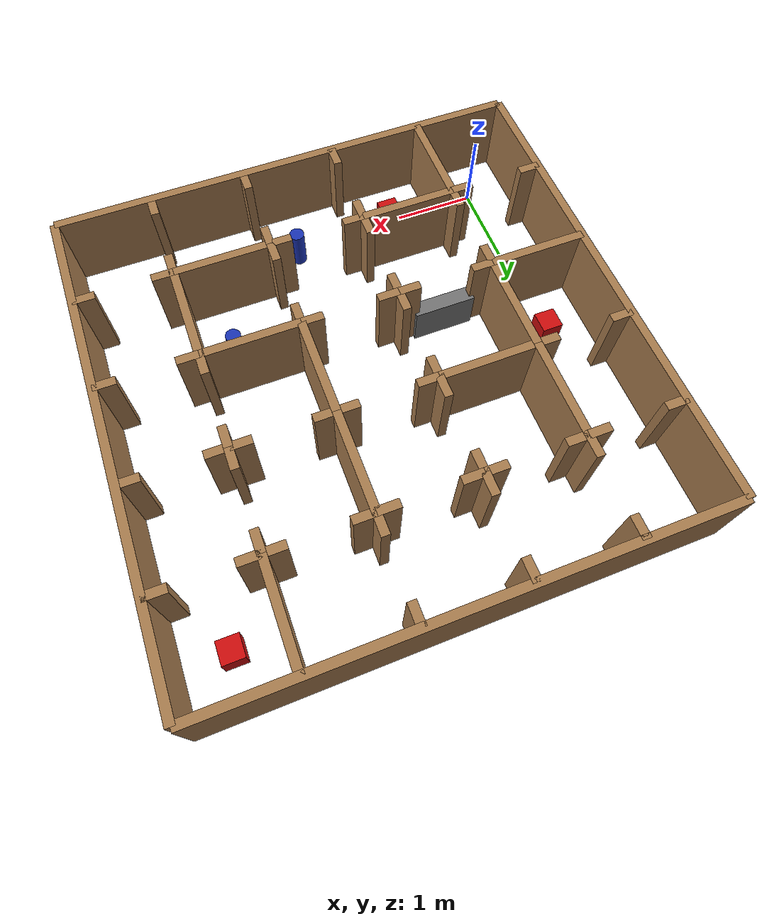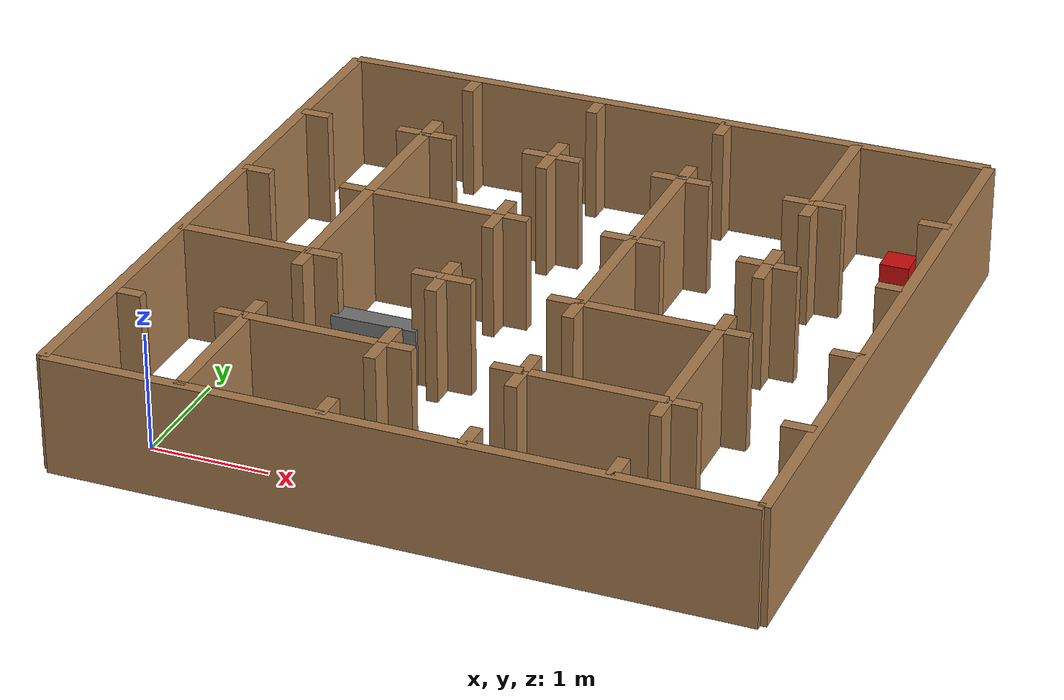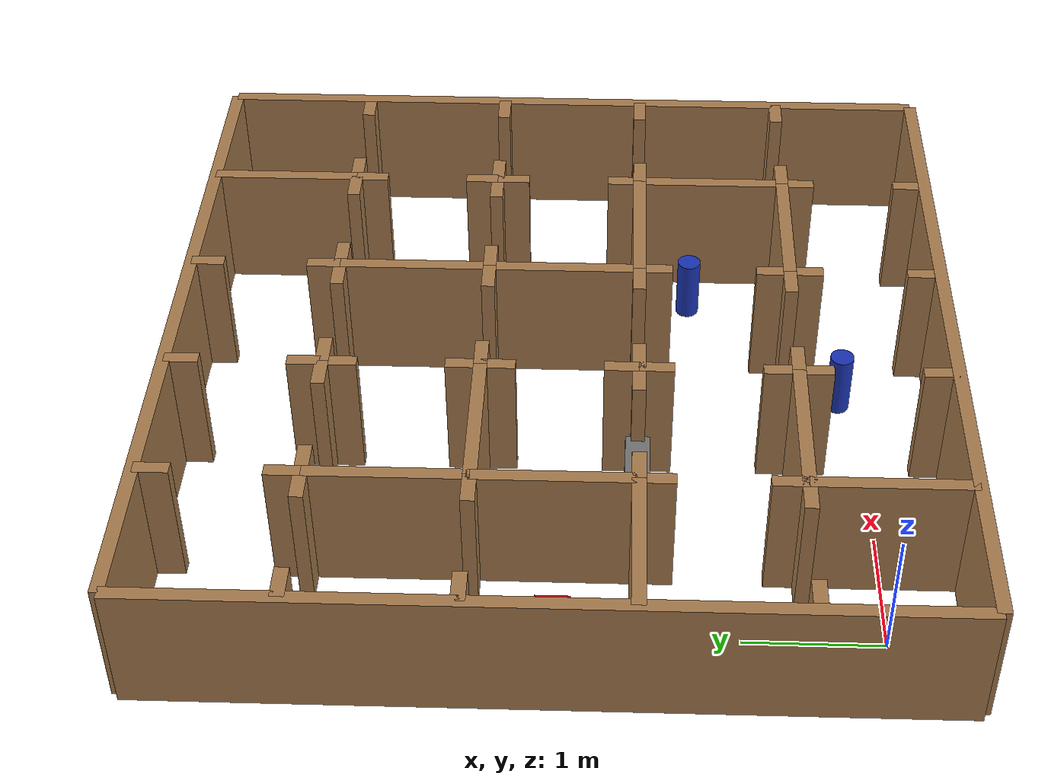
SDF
<sdf version="1.5">
 <world name="tars_borde_bloqueo">
  <physics type="ode">
   <max_step_size>0.001</max_step_size>
   <real_time_factor>1</real_time_factor>
   <real_time_update_rate>1000</real_time_update_rate>
   <gravity>0 0 -9.8</gravity>
  </physics>
  <plugin filename="gz-sim-physics-system" name="gz::sim::systems::Physics"/>
  <plugin filename="gz-sim-user-commands-system" name="gz::sim::systems::UserCommands"/>
  <plugin filename="gz-sim-scene-broadcaster-system" name="gz::sim::systems::SceneBroadcaster"/>
  <plugin filename="gz-sim-contact-system" name="gz::sim::systems::Contact"/>
  <plugin filename="gz-sim-sensors-system" name="gz::sim::systems::Sensors">
   <render_engine>ogre2</render_engine>
  </plugin>
  <plugin filename="gz-sim-imu-system" name="gz::sim::systems::Imu"/>
  <scene>
   <shadows>false</shadows>
   <ambient>0.2 0.2 0.2 1</ambient>
   <background>1 1 1 1</background>
   <grid>false</grid>
   <origin_visual>false</origin_visual>
  </scene>
  <include><uri>model://sun</uri></include>
  <light name="camera_spot_1_light" type="spot">
   <pose>-6 4 4 0 -1 -0.8</pose>
   <diffuse>0.5 0.5 0.5 1</diffuse>
   <specular>0.1 0.1 0.1 1</specular>
   <direction>0 0 -1</direction>
   <attenuation>
    <range>20</range>
    <constant>0.2</constant>
    <linear>0.01</linear>
    <quadratic>0.001</quadratic>
   </attenuation>
   <cast_shadows>0</cast_shadows>
   <spot><inner_angle>0.6</inner_angle><outer_angle>1</outer_angle><falloff>1</falloff></spot>
  </light>
  <light name="camera_spot_2_light" type="spot">
   <pose>5 -3 4 0 0.8 -0.6</pose>
   <diffuse>0.5 0.5 0.5 1</diffuse>
   <specular>0.1 0.1 0.1 1</specular>
   <direction>0 0 -1</direction>
   <attenuation>
    <range>20</range>
    <constant>0.3</constant>
    <linear>0.01</linear>
    <quadratic>0.001</quadratic>
   </attenuation>
   <cast_shadows>0</cast_shadows>
   <spot><inner_angle>0.6</inner_angle><outer_angle>1</outer_angle><falloff>1</falloff></spot>
  </light>
  <model name="paredes_borde">
   <static>true</static>
   <link name="pared_1">
    <pose>2.3 -0.575 0.5 0 0 0</pose>
    <collision name="collision"><geometry><box><size>5.75 0.1 1.0</size></box></geometry></collision>
    <visual name="visual">
     <geometry><box><size>5.75 0.1 1.0</size></box></geometry>
     <material><ambient>0.65 0.48 0.30 1</ambient><diffuse>0.65 0.48 0.30 1</diffuse></material>
    </visual>
   </link>
   <link name="pared_2">
    <pose>5.175 2.3 0.5 0 0 0</pose>
    <collision name="collision"><geometry><box><size>0.1 5.75 1.0</size></box></geometry></collision>
    <visual name="visual">
     <geometry><box><size>0.1 5.75 1.0</size></box></geometry>
     <material><ambient>0.65 0.48 0.30 1</ambient><diffuse>0.65 0.48 0.30 1</diffuse></material>
    </visual>
   </link>
   <link name="pared_3">
    <pose>2.3 5.175 0.5 0 0 0</pose>
    <collision name="collision"><geometry><box><size>5.75 0.1 1.0</size></box></geometry></collision>
    <visual name="visual">
     <geometry><box><size>5.75 0.1 1.0</size></box></geometry>
     <material><ambient>0.65 0.48 0.30 1</ambient><diffuse>0.65 0.48 0.30 1</diffuse></material>
    </visual>
   </link>
   <link name="pared_4">
    <pose>-0.575 2.3 0.5 0 0 0</pose>
    <collision name="collision"><geometry><box><size>0.1 5.75 1.0</size></box></geometry></collision>
    <visual name="visual">
     <geometry><box><size>0.1 5.75 1.0</size></box></geometry>
     <material><ambient>0.65 0.48 0.30 1</ambient><diffuse>0.65 0.48 0.30 1</diffuse></material>
    </visual>
   </link>
   <link name="pared_5">
    <pose>0.575 0.0 0.5 0 0 0</pose>
    <collision name="collision"><geometry><box><size>0.1 1.15 1.0</size></box></geometry></collision>
    <visual name="visual">
     <geometry><box><size>0.1 1.15 1.0</size></box></geometry>
     <material><ambient>0.65 0.48 0.30 1</ambient><diffuse>0.65 0.48 0.30 1</diffuse></material>
    </visual>
   </link>
   <link name="pared_6">
    <pose>-0.4475 0.575 0.5 0 0 0</pose>
    <collision name="collision">
     <geometry><box><size>0.25499999999999995 0.1 1.0</size></box></geometry>
    </collision>
    <visual name="visual">
     <geometry><box><size>0.25499999999999995 0.1 1.0</size></box></geometry>
     <material><ambient>0.65 0.48 0.30 1</ambient><diffuse>0.65 0.48 0.30 1</diffuse></material>
    </visual>
   </link>
   <link name="pared_7">
    <pose>0.4475 0.575 0.5 0 0 0</pose>
    <collision name="collision">
     <geometry><box><size>0.25499999999999995 0.1 1.0</size></box></geometry>
    </collision>
    <visual name="visual">
     <geometry><box><size>0.25499999999999995 0.1 1.0</size></box></geometry>
     <material><ambient>0.65 0.48 0.30 1</ambient><diffuse>0.65 0.48 0.30 1</diffuse></material>
    </visual>
   </link>
   <link name="pared_8">
    <pose>0.575 0.7024999999999999 0.5 0 0 0</pose>
    <collision name="collision">
     <geometry><box><size>0.1 0.2549999999999999 1.0</size></box></geometry>
    </collision>
    <visual name="visual">
     <geometry><box><size>0.1 0.2549999999999999 1.0</size></box></geometry>
     <material><ambient>0.65 0.48 0.30 1</ambient><diffuse>0.65 0.48 0.30 1</diffuse></material>
    </visual>
   </link>
   <link name="pared_9">
    <pose>0.575 1.5975 0.5 0 0 0</pose>
    <collision name="collision">
     <geometry><box><size>0.1 0.2549999999999999 1.0</size></box></geometry>
    </collision>
    <visual name="visual">
     <geometry><box><size>0.1 0.2549999999999999 1.0</size></box></geometry>
     <material><ambient>0.65 0.48 0.30 1</ambient><diffuse>0.65 0.48 0.30 1</diffuse></material>
    </visual>
   </link>
   <link name="pared_10">
    <pose>0.0 1.7249999999999999 0.5 0 0 0</pose>
    <collision name="collision"><geometry><box><size>1.15 0.1 1.0</size></box></geometry></collision>
    <visual name="visual">
     <geometry><box><size>1.15 0.1 1.0</size></box></geometry>
     <material><ambient>0.65 0.48 0.30 1</ambient><diffuse>0.65 0.48 0.30 1</diffuse></material>
    </visual>
   </link>
   <link name="pared_11">
    <pose>0.575 2.3 0.5 0 0 0</pose>
    <collision name="collision">
     <geometry><box><size>0.1 1.1500000000000001 1.0</size></box></geometry>
    </collision>
    <visual name="visual">
     <geometry><box><size>0.1 1.1500000000000001 1.0</size></box></geometry>
     <material><ambient>0.65 0.48 0.30 1</ambient><diffuse>0.65 0.48 0.30 1</diffuse></material>
    </visual>
   </link>
   <link name="pared_12">
    <pose>-0.4475 2.875 0.5 0 0 0</pose>
    <collision name="collision">
     <geometry><box><size>0.25499999999999995 0.1 1.0</size></box></geometry>
    </collision>
    <visual name="visual">
     <geometry><box><size>0.25499999999999995 0.1 1.0</size></box></geometry>
     <material><ambient>0.65 0.48 0.30 1</ambient><diffuse>0.65 0.48 0.30 1</diffuse></material>
    </visual>
   </link>
   <link name="pared_13">
    <pose>0.4475 2.875 0.5 0 0 0</pose>
    <collision name="collision">
     <geometry><box><size>0.25499999999999995 0.1 1.0</size></box></geometry>
    </collision>
    <visual name="visual">
     <geometry><box><size>0.25499999999999995 0.1 1.0</size></box></geometry>
     <material><ambient>0.65 0.48 0.30 1</ambient><diffuse>0.65 0.48 0.30 1</diffuse></material>
    </visual>
   </link>
   <link name="pared_14">
    <pose>0.575 3.4499999999999997 0.5 0 0 0</pose>
    <collision name="collision">
     <geometry><box><size>0.1 1.1499999999999995 1.0</size></box></geometry>
    </collision>
    <visual name="visual">
     <geometry><box><size>0.1 1.1499999999999995 1.0</size></box></geometry>
     <material><ambient>0.65 0.48 0.30 1</ambient><diffuse>0.65 0.48 0.30 1</diffuse></material>
    </visual>
   </link>
   <link name="pared_15">
    <pose>-0.4475 4.0249999999999995 0.5 0 0 0</pose>
    <collision name="collision">
     <geometry><box><size>0.25499999999999995 0.1 1.0</size></box></geometry>
    </collision>
    <visual name="visual">
     <geometry><box><size>0.25499999999999995 0.1 1.0</size></box></geometry>
     <material><ambient>0.65 0.48 0.30 1</ambient><diffuse>0.65 0.48 0.30 1</diffuse></material>
    </visual>
   </link>
   <link name="pared_16">
    <pose>0.4475 4.0249999999999995 0.5 0 0 0</pose>
    <collision name="collision">
     <geometry><box><size>0.25499999999999995 0.1 1.0</size></box></geometry>
    </collision>
    <visual name="visual">
     <geometry><box><size>0.25499999999999995 0.1 1.0</size></box></geometry>
     <material><ambient>0.65 0.48 0.30 1</ambient><diffuse>0.65 0.48 0.30 1</diffuse></material>
    </visual>
   </link>
   <link name="pared_17">
    <pose>0.575 4.1525 0.5 0 0 0</pose>
    <collision name="collision">
     <geometry><box><size>0.1 0.2549999999999999 1.0</size></box></geometry>
    </collision>
    <visual name="visual">
     <geometry><box><size>0.1 0.2549999999999999 1.0</size></box></geometry>
     <material><ambient>0.65 0.48 0.30 1</ambient><diffuse>0.65 0.48 0.30 1</diffuse></material>
    </visual>
   </link>
   <link name="pared_18">
    <pose>0.575 5.047499999999999 0.5 0 0 0</pose>
    <collision name="collision">
     <geometry><box><size>0.1 0.2549999999999999 1.0</size></box></geometry>
    </collision>
    <visual name="visual">
     <geometry><box><size>0.1 0.2549999999999999 1.0</size></box></geometry>
     <material><ambient>0.65 0.48 0.30 1</ambient><diffuse>0.65 0.48 0.30 1</diffuse></material>
    </visual>
   </link>
   <link name="pared_19">
    <pose>1.7249999999999999 -0.4475 0.5 0 0 0</pose>
    <collision name="collision">
     <geometry><box><size>0.1 0.25499999999999995 1.0</size></box></geometry>
    </collision>
    <visual name="visual">
     <geometry><box><size>0.1 0.25499999999999995 1.0</size></box></geometry>
     <material><ambient>0.65 0.48 0.30 1</ambient><diffuse>0.65 0.48 0.30 1</diffuse></material>
    </visual>
   </link>
   <link name="pared_20">
    <pose>1.7249999999999999 0.4475 0.5 0 0 0</pose>
    <collision name="collision">
     <geometry><box><size>0.1 0.25499999999999995 1.0</size></box></geometry>
    </collision>
    <visual name="visual">
     <geometry><box><size>0.1 0.25499999999999995 1.0</size></box></geometry>
     <material><ambient>0.65 0.48 0.30 1</ambient><diffuse>0.65 0.48 0.30 1</diffuse></material>
    </visual>
   </link>
   <link name="pared_21">
    <pose>1.15 0.575 0.5 0 0 0</pose>
    <collision name="collision"><geometry><box><size>1.15 0.1 1.0</size></box></geometry></collision>
    <visual name="visual">
     <geometry><box><size>1.15 0.1 1.0</size></box></geometry>
     <material><ambient>0.65 0.48 0.30 1</ambient><diffuse>0.65 0.48 0.30 1</diffuse></material>
    </visual>
   </link>
   <link name="pared_22">
    <pose>1.7249999999999999 0.7024999999999999 0.5 0 0 0</pose>
    <collision name="collision">
     <geometry><box><size>0.1 0.2549999999999999 1.0</size></box></geometry>
    </collision>
    <visual name="visual">
     <geometry><box><size>0.1 0.2549999999999999 1.0</size></box></geometry>
     <material><ambient>0.65 0.48 0.30 1</ambient><diffuse>0.65 0.48 0.30 1</diffuse></material>
    </visual>
   </link>
   <link name="pared_23">
    <pose>1.7249999999999999 1.5975 0.5 0 0 0</pose>
    <collision name="collision">
     <geometry><box><size>0.1 0.2549999999999999 1.0</size></box></geometry>
    </collision>
    <visual name="visual">
     <geometry><box><size>0.1 0.2549999999999999 1.0</size></box></geometry>
     <material><ambient>0.65 0.48 0.30 1</ambient><diffuse>0.65 0.48 0.30 1</diffuse></material>
    </visual>
   </link>
   <link name="pared_24">
    <pose>0.7024999999999999 1.7249999999999999 0.5 0 0 0</pose>
    <collision name="collision">
     <geometry><box><size>0.2549999999999999 0.1 1.0</size></box></geometry>
    </collision>
    <visual name="visual">
     <geometry><box><size>0.2549999999999999 0.1 1.0</size></box></geometry>
     <material><ambient>0.65 0.48 0.30 1</ambient><diffuse>0.65 0.48 0.30 1</diffuse></material>
    </visual>
   </link>
   <link name="pared_25">
    <pose>1.5975 1.7249999999999999 0.5 0 0 0</pose>
    <collision name="collision">
     <geometry><box><size>0.2549999999999999 0.1 1.0</size></box></geometry>
    </collision>
    <visual name="visual">
     <geometry><box><size>0.2549999999999999 0.1 1.0</size></box></geometry>
     <material><ambient>0.65 0.48 0.30 1</ambient><diffuse>0.65 0.48 0.30 1</diffuse></material>
    </visual>
   </link>
   <link name="pared_26">
    <pose>1.7249999999999999 1.8524999999999998 0.5 0 0 0</pose>
    <collision name="collision">
     <geometry><box><size>0.1 0.2549999999999999 1.0</size></box></geometry>
    </collision>
    <visual name="visual">
     <geometry><box><size>0.1 0.2549999999999999 1.0</size></box></geometry>
     <material><ambient>0.65 0.48 0.30 1</ambient><diffuse>0.65 0.48 0.30 1</diffuse></material>
    </visual>
   </link>
   <link name="pared_27">
    <pose>1.7249999999999999 2.7474999999999996 0.5 0 0 0</pose>
    <collision name="collision">
     <geometry><box><size>0.1 0.25500000000000034 1.0</size></box></geometry>
    </collision>
    <visual name="visual">
     <geometry><box><size>0.1 0.25500000000000034 1.0</size></box></geometry>
     <material><ambient>0.65 0.48 0.30 1</ambient><diffuse>0.65 0.48 0.30 1</diffuse></material>
    </visual>
   </link>
   <link name="pared_28">
    <pose>1.15 2.875 0.5 0 0 0</pose>
    <collision name="collision"><geometry><box><size>1.15 0.1 1.0</size></box></geometry></collision>
    <visual name="visual">
     <geometry><box><size>1.15 0.1 1.0</size></box></geometry>
     <material><ambient>0.65 0.48 0.30 1</ambient><diffuse>0.65 0.48 0.30 1</diffuse></material>
    </visual>
   </link>
   <link name="pared_29">
    <pose>1.7249999999999999 3.0025 0.5 0 0 0</pose>
    <collision name="collision">
     <geometry><box><size>0.1 0.2549999999999999 1.0</size></box></geometry>
    </collision>
    <visual name="visual">
     <geometry><box><size>0.1 0.2549999999999999 1.0</size></box></geometry>
     <material><ambient>0.65 0.48 0.30 1</ambient><diffuse>0.65 0.48 0.30 1</diffuse></material>
    </visual>
   </link>
   <link name="pared_30">
    <pose>1.7249999999999999 3.8974999999999995 0.5 0 0 0</pose>
    <collision name="collision">
     <geometry><box><size>0.1 0.2549999999999999 1.0</size></box></geometry>
    </collision>
    <visual name="visual">
     <geometry><box><size>0.1 0.2549999999999999 1.0</size></box></geometry>
     <material><ambient>0.65 0.48 0.30 1</ambient><diffuse>0.65 0.48 0.30 1</diffuse></material>
    </visual>
   </link>
   <link name="pared_31">
    <pose>0.7024999999999999 4.0249999999999995 0.5 0 0 0</pose>
    <collision name="collision">
     <geometry><box><size>0.2549999999999999 0.1 1.0</size></box></geometry>
    </collision>
    <visual name="visual">
     <geometry><box><size>0.2549999999999999 0.1 1.0</size></box></geometry>
     <material><ambient>0.65 0.48 0.30 1</ambient><diffuse>0.65 0.48 0.30 1</diffuse></material>
    </visual>
   </link>
   <link name="pared_32">
    <pose>1.5975 4.0249999999999995 0.5 0 0 0</pose>
    <collision name="collision">
     <geometry><box><size>0.2549999999999999 0.1 1.0</size></box></geometry>
    </collision>
    <visual name="visual">
     <geometry><box><size>0.2549999999999999 0.1 1.0</size></box></geometry>
     <material><ambient>0.65 0.48 0.30 1</ambient><diffuse>0.65 0.48 0.30 1</diffuse></material>
    </visual>
   </link>
   <link name="pared_33">
    <pose>1.7249999999999999 4.1525 0.5 0 0 0</pose>
    <collision name="collision">
     <geometry><box><size>0.1 0.2549999999999999 1.0</size></box></geometry>
    </collision>
    <visual name="visual">
     <geometry><box><size>0.1 0.2549999999999999 1.0</size></box></geometry>
     <material><ambient>0.65 0.48 0.30 1</ambient><diffuse>0.65 0.48 0.30 1</diffuse></material>
    </visual>
   </link>
   <link name="pared_34">
    <pose>1.7249999999999999 5.047499999999999 0.5 0 0 0</pose>
    <collision name="collision">
     <geometry><box><size>0.1 0.2549999999999999 1.0</size></box></geometry>
    </collision>
    <visual name="visual">
     <geometry><box><size>0.1 0.2549999999999999 1.0</size></box></geometry>
     <material><ambient>0.65 0.48 0.30 1</ambient><diffuse>0.65 0.48 0.30 1</diffuse></material>
    </visual>
   </link>
   <link name="pared_35">
    <pose>2.875 -0.4475 0.5 0 0 0</pose>
    <collision name="collision">
     <geometry><box><size>0.1 0.25499999999999995 1.0</size></box></geometry>
    </collision>
    <visual name="visual">
     <geometry><box><size>0.1 0.25499999999999995 1.0</size></box></geometry>
     <material><ambient>0.65 0.48 0.30 1</ambient><diffuse>0.65 0.48 0.30 1</diffuse></material>
    </visual>
   </link>
   <link name="pared_36">
    <pose>2.875 0.4475 0.5 0 0 0</pose>
    <collision name="collision">
     <geometry><box><size>0.1 0.25499999999999995 1.0</size></box></geometry>
    </collision>
    <visual name="visual">
     <geometry><box><size>0.1 0.25499999999999995 1.0</size></box></geometry>
     <material><ambient>0.65 0.48 0.30 1</ambient><diffuse>0.65 0.48 0.30 1</diffuse></material>
    </visual>
   </link>
   <link name="pared_37">
    <pose>1.8524999999999998 0.575 0.5 0 0 0</pose>
    <collision name="collision">
     <geometry><box><size>0.2549999999999999 0.1 1.0</size></box></geometry>
    </collision>
    <visual name="visual">
     <geometry><box><size>0.2549999999999999 0.1 1.0</size></box></geometry>
     <material><ambient>0.65 0.48 0.30 1</ambient><diffuse>0.65 0.48 0.30 1</diffuse></material>
    </visual>
   </link>
   <link name="pared_38">
    <pose>2.7474999999999996 0.575 0.5 0 0 0</pose>
    <collision name="collision">
     <geometry><box><size>0.25500000000000034 0.1 1.0</size></box></geometry>
    </collision>
    <visual name="visual">
     <geometry><box><size>0.25500000000000034 0.1 1.0</size></box></geometry>
     <material><ambient>0.65 0.48 0.30 1</ambient><diffuse>0.65 0.48 0.30 1</diffuse></material>
    </visual>
   </link>
   <link name="pared_39">
    <pose>2.875 0.7024999999999999 0.5 0 0 0</pose>
    <collision name="collision">
     <geometry><box><size>0.1 0.2549999999999999 1.0</size></box></geometry>
    </collision>
    <visual name="visual">
     <geometry><box><size>0.1 0.2549999999999999 1.0</size></box></geometry>
     <material><ambient>0.65 0.48 0.30 1</ambient><diffuse>0.65 0.48 0.30 1</diffuse></material>
    </visual>
   </link>
   <link name="pared_40">
    <pose>2.875 1.5975 0.5 0 0 0</pose>
    <collision name="collision">
     <geometry><box><size>0.1 0.2549999999999999 1.0</size></box></geometry>
    </collision>
    <visual name="visual">
     <geometry><box><size>0.1 0.2549999999999999 1.0</size></box></geometry>
     <material><ambient>0.65 0.48 0.30 1</ambient><diffuse>0.65 0.48 0.30 1</diffuse></material>
    </visual>
   </link>
   <link name="pared_41">
    <pose>1.8524999999999998 1.7249999999999999 0.5 0 0 0</pose>
    <collision name="collision">
     <geometry><box><size>0.2549999999999999 0.1 1.0</size></box></geometry>
    </collision>
    <visual name="visual">
     <geometry><box><size>0.2549999999999999 0.1 1.0</size></box></geometry>
     <material><ambient>0.65 0.48 0.30 1</ambient><diffuse>0.65 0.48 0.30 1</diffuse></material>
    </visual>
   </link>
   <link name="pared_42">
    <pose>2.7474999999999996 1.7249999999999999 0.5 0 0 0</pose>
    <collision name="collision">
     <geometry><box><size>0.25500000000000034 0.1 1.0</size></box></geometry>
    </collision>
    <visual name="visual">
     <geometry><box><size>0.25500000000000034 0.1 1.0</size></box></geometry>
     <material><ambient>0.65 0.48 0.30 1</ambient><diffuse>0.65 0.48 0.30 1</diffuse></material>
    </visual>
   </link>
   <link name="pared_43">
    <pose>2.875 2.3 0.5 0 0 0</pose>
    <collision name="collision">
     <geometry><box><size>0.1 1.1500000000000001 1.0</size></box></geometry>
    </collision>
    <visual name="visual">
     <geometry><box><size>0.1 1.1500000000000001 1.0</size></box></geometry>
     <material><ambient>0.65 0.48 0.30 1</ambient><diffuse>0.65 0.48 0.30 1</diffuse></material>
    </visual>
   </link>
   <link name="pared_44">
    <pose>1.8524999999999998 2.875 0.5 0 0 0</pose>
    <collision name="collision">
     <geometry><box><size>0.2549999999999999 0.1 1.0</size></box></geometry>
    </collision>
    <visual name="visual">
     <geometry><box><size>0.2549999999999999 0.1 1.0</size></box></geometry>
     <material><ambient>0.65 0.48 0.30 1</ambient><diffuse>0.65 0.48 0.30 1</diffuse></material>
    </visual>
   </link>
   <link name="pared_45">
    <pose>2.7474999999999996 2.875 0.5 0 0 0</pose>
    <collision name="collision">
     <geometry><box><size>0.25500000000000034 0.1 1.0</size></box></geometry>
    </collision>
    <visual name="visual">
     <geometry><box><size>0.25500000000000034 0.1 1.0</size></box></geometry>
     <material><ambient>0.65 0.48 0.30 1</ambient><diffuse>0.65 0.48 0.30 1</diffuse></material>
    </visual>
   </link>
   <link name="pared_46">
    <pose>2.875 3.4499999999999997 0.5 0 0 0</pose>
    <collision name="collision">
     <geometry><box><size>0.1 1.1499999999999995 1.0</size></box></geometry>
    </collision>
    <visual name="visual">
     <geometry><box><size>0.1 1.1499999999999995 1.0</size></box></geometry>
     <material><ambient>0.65 0.48 0.30 1</ambient><diffuse>0.65 0.48 0.30 1</diffuse></material>
    </visual>
   </link>
   <link name="pared_47">
    <pose>1.8524999999999998 4.0249999999999995 0.5 0 0 0</pose>
    <collision name="collision">
     <geometry><box><size>0.2549999999999999 0.1 1.0</size></box></geometry>
    </collision>
    <visual name="visual">
     <geometry><box><size>0.2549999999999999 0.1 1.0</size></box></geometry>
     <material><ambient>0.65 0.48 0.30 1</ambient><diffuse>0.65 0.48 0.30 1</diffuse></material>
    </visual>
   </link>
   <link name="pared_48">
    <pose>2.7474999999999996 4.0249999999999995 0.5 0 0 0</pose>
    <collision name="collision">
     <geometry><box><size>0.25500000000000034 0.1 1.0</size></box></geometry>
    </collision>
    <visual name="visual">
     <geometry><box><size>0.25500000000000034 0.1 1.0</size></box></geometry>
     <material><ambient>0.65 0.48 0.30 1</ambient><diffuse>0.65 0.48 0.30 1</diffuse></material>
    </visual>
   </link>
   <link name="pared_49">
    <pose>2.875 4.1525 0.5 0 0 0</pose>
    <collision name="collision">
     <geometry><box><size>0.1 0.2549999999999999 1.0</size></box></geometry>
    </collision>
    <visual name="visual">
     <geometry><box><size>0.1 0.2549999999999999 1.0</size></box></geometry>
     <material><ambient>0.65 0.48 0.30 1</ambient><diffuse>0.65 0.48 0.30 1</diffuse></material>
    </visual>
   </link>
   <link name="pared_50">
    <pose>2.875 5.047499999999999 0.5 0 0 0</pose>
    <collision name="collision">
     <geometry><box><size>0.1 0.2549999999999999 1.0</size></box></geometry>
    </collision>
    <visual name="visual">
     <geometry><box><size>0.1 0.2549999999999999 1.0</size></box></geometry>
     <material><ambient>0.65 0.48 0.30 1</ambient><diffuse>0.65 0.48 0.30 1</diffuse></material>
    </visual>
   </link>
   <link name="pared_51">
    <pose>4.0249999999999995 -0.4475 0.5 0 0 0</pose>
    <collision name="collision">
     <geometry><box><size>0.1 0.25499999999999995 1.0</size></box></geometry>
    </collision>
    <visual name="visual">
     <geometry><box><size>0.1 0.25499999999999995 1.0</size></box></geometry>
     <material><ambient>0.65 0.48 0.30 1</ambient><diffuse>0.65 0.48 0.30 1</diffuse></material>
    </visual>
   </link>
   <link name="pared_52">
    <pose>4.0249999999999995 0.4475 0.5 0 0 0</pose>
    <collision name="collision">
     <geometry><box><size>0.1 0.25499999999999995 1.0</size></box></geometry>
    </collision>
    <visual name="visual">
     <geometry><box><size>0.1 0.25499999999999995 1.0</size></box></geometry>
     <material><ambient>0.65 0.48 0.30 1</ambient><diffuse>0.65 0.48 0.30 1</diffuse></material>
    </visual>
   </link>
   <link name="pared_53">
    <pose>3.4499999999999997 0.575 0.5 0 0 0</pose>
    <collision name="collision">
     <geometry><box><size>1.1499999999999995 0.1 1.0</size></box></geometry>
    </collision>
    <visual name="visual">
     <geometry><box><size>1.1499999999999995 0.1 1.0</size></box></geometry>
     <material><ambient>0.65 0.48 0.30 1</ambient><diffuse>0.65 0.48 0.30 1</diffuse></material>
    </visual>
   </link>
   <link name="pared_54">
    <pose>4.0249999999999995 1.15 0.5 0 0 0</pose>
    <collision name="collision"><geometry><box><size>0.1 1.15 1.0</size></box></geometry></collision>
    <visual name="visual">
     <geometry><box><size>0.1 1.15 1.0</size></box></geometry>
     <material><ambient>0.65 0.48 0.30 1</ambient><diffuse>0.65 0.48 0.30 1</diffuse></material>
    </visual>
   </link>
   <link name="pared_55">
    <pose>3.4499999999999997 1.7249999999999999 0.5 0 0 0</pose>
    <collision name="collision">
     <geometry><box><size>1.1499999999999995 0.1 1.0</size></box></geometry>
    </collision>
    <visual name="visual">
     <geometry><box><size>1.1499999999999995 0.1 1.0</size></box></geometry>
     <material><ambient>0.65 0.48 0.30 1</ambient><diffuse>0.65 0.48 0.30 1</diffuse></material>
    </visual>
   </link>
   <link name="pared_56">
    <pose>4.0249999999999995 1.8524999999999998 0.5 0 0 0</pose>
    <collision name="collision">
     <geometry><box><size>0.1 0.2549999999999999 1.0</size></box></geometry>
    </collision>
    <visual name="visual">
     <geometry><box><size>0.1 0.2549999999999999 1.0</size></box></geometry>
     <material><ambient>0.65 0.48 0.30 1</ambient><diffuse>0.65 0.48 0.30 1</diffuse></material>
    </visual>
   </link>
   <link name="pared_57">
    <pose>4.0249999999999995 2.7474999999999996 0.5 0 0 0</pose>
    <collision name="collision">
     <geometry><box><size>0.1 0.25500000000000034 1.0</size></box></geometry>
    </collision>
    <visual name="visual">
     <geometry><box><size>0.1 0.25500000000000034 1.0</size></box></geometry>
     <material><ambient>0.65 0.48 0.30 1</ambient><diffuse>0.65 0.48 0.30 1</diffuse></material>
    </visual>
   </link>
   <link name="pared_58">
    <pose>3.0025 2.875 0.5 0 0 0</pose>
    <collision name="collision">
     <geometry><box><size>0.2549999999999999 0.1 1.0</size></box></geometry>
    </collision>
    <visual name="visual">
     <geometry><box><size>0.2549999999999999 0.1 1.0</size></box></geometry>
     <material><ambient>0.65 0.48 0.30 1</ambient><diffuse>0.65 0.48 0.30 1</diffuse></material>
    </visual>
   </link>
   <link name="pared_59">
    <pose>3.8974999999999995 2.875 0.5 0 0 0</pose>
    <collision name="collision">
     <geometry><box><size>0.2549999999999999 0.1 1.0</size></box></geometry>
    </collision>
    <visual name="visual">
     <geometry><box><size>0.2549999999999999 0.1 1.0</size></box></geometry>
     <material><ambient>0.65 0.48 0.30 1</ambient><diffuse>0.65 0.48 0.30 1</diffuse></material>
    </visual>
   </link>
   <link name="pared_60">
    <pose>4.0249999999999995 3.0025 0.5 0 0 0</pose>
    <collision name="collision">
     <geometry><box><size>0.1 0.2549999999999999 1.0</size></box></geometry>
    </collision>
    <visual name="visual">
     <geometry><box><size>0.1 0.2549999999999999 1.0</size></box></geometry>
     <material><ambient>0.65 0.48 0.30 1</ambient><diffuse>0.65 0.48 0.30 1</diffuse></material>
    </visual>
   </link>
   <link name="pared_61">
    <pose>4.0249999999999995 3.8974999999999995 0.5 0 0 0</pose>
    <collision name="collision">
     <geometry><box><size>0.1 0.2549999999999999 1.0</size></box></geometry>
    </collision>
    <visual name="visual">
     <geometry><box><size>0.1 0.2549999999999999 1.0</size></box></geometry>
     <material><ambient>0.65 0.48 0.30 1</ambient><diffuse>0.65 0.48 0.30 1</diffuse></material>
    </visual>
   </link>
   <link name="pared_62">
    <pose>3.0025 4.0249999999999995 0.5 0 0 0</pose>
    <collision name="collision">
     <geometry><box><size>0.2549999999999999 0.1 1.0</size></box></geometry>
    </collision>
    <visual name="visual">
     <geometry><box><size>0.2549999999999999 0.1 1.0</size></box></geometry>
     <material><ambient>0.65 0.48 0.30 1</ambient><diffuse>0.65 0.48 0.30 1</diffuse></material>
    </visual>
   </link>
   <link name="pared_63">
    <pose>3.8974999999999995 4.0249999999999995 0.5 0 0 0</pose>
    <collision name="collision">
     <geometry><box><size>0.2549999999999999 0.1 1.0</size></box></geometry>
    </collision>
    <visual name="visual">
     <geometry><box><size>0.2549999999999999 0.1 1.0</size></box></geometry>
     <material><ambient>0.65 0.48 0.30 1</ambient><diffuse>0.65 0.48 0.30 1</diffuse></material>
    </visual>
   </link>
   <link name="pared_64">
    <pose>4.0249999999999995 4.6 0.5 0 0 0</pose>
    <collision name="collision">
     <geometry><box><size>0.1 1.1500000000000004 1.0</size></box></geometry>
    </collision>
    <visual name="visual">
     <geometry><box><size>0.1 1.1500000000000004 1.0</size></box></geometry>
     <material><ambient>0.65 0.48 0.30 1</ambient><diffuse>0.65 0.48 0.30 1</diffuse></material>
    </visual>
   </link>
   <link name="pared_65">
    <pose>4.1525 0.575 0.5 0 0 0</pose>
    <collision name="collision">
     <geometry><box><size>0.2549999999999999 0.1 1.0</size></box></geometry>
    </collision>
    <visual name="visual">
     <geometry><box><size>0.2549999999999999 0.1 1.0</size></box></geometry>
     <material><ambient>0.65 0.48 0.30 1</ambient><diffuse>0.65 0.48 0.30 1</diffuse></material>
    </visual>
   </link>
   <link name="pared_66">
    <pose>5.047499999999999 0.575 0.5 0 0 0</pose>
    <collision name="collision">
     <geometry><box><size>0.2549999999999999 0.1 1.0</size></box></geometry>
    </collision>
    <visual name="visual">
     <geometry><box><size>0.2549999999999999 0.1 1.0</size></box></geometry>
     <material><ambient>0.65 0.48 0.30 1</ambient><diffuse>0.65 0.48 0.30 1</diffuse></material>
    </visual>
   </link>
   <link name="pared_67">
    <pose>4.1525 1.7249999999999999 0.5 0 0 0</pose>
    <collision name="collision">
     <geometry><box><size>0.2549999999999999 0.1 1.0</size></box></geometry>
    </collision>
    <visual name="visual">
     <geometry><box><size>0.2549999999999999 0.1 1.0</size></box></geometry>
     <material><ambient>0.65 0.48 0.30 1</ambient><diffuse>0.65 0.48 0.30 1</diffuse></material>
    </visual>
   </link>
   <link name="pared_68">
    <pose>5.047499999999999 1.7249999999999999 0.5 0 0 0</pose>
    <collision name="collision">
     <geometry><box><size>0.2549999999999999 0.1 1.0</size></box></geometry>
    </collision>
    <visual name="visual">
     <geometry><box><size>0.2549999999999999 0.1 1.0</size></box></geometry>
     <material><ambient>0.65 0.48 0.30 1</ambient><diffuse>0.65 0.48 0.30 1</diffuse></material>
    </visual>
   </link>
   <link name="pared_69">
    <pose>4.1525 2.875 0.5 0 0 0</pose>
    <collision name="collision">
     <geometry><box><size>0.2549999999999999 0.1 1.0</size></box></geometry>
    </collision>
    <visual name="visual">
     <geometry><box><size>0.2549999999999999 0.1 1.0</size></box></geometry>
     <material><ambient>0.65 0.48 0.30 1</ambient><diffuse>0.65 0.48 0.30 1</diffuse></material>
    </visual>
   </link>
   <link name="pared_70">
    <pose>5.047499999999999 2.875 0.5 0 0 0</pose>
    <collision name="collision">
     <geometry><box><size>0.2549999999999999 0.1 1.0</size></box></geometry>
    </collision>
    <visual name="visual">
     <geometry><box><size>0.2549999999999999 0.1 1.0</size></box></geometry>
     <material><ambient>0.65 0.48 0.30 1</ambient><diffuse>0.65 0.48 0.30 1</diffuse></material>
    </visual>
   </link>
   <link name="pared_71">
    <pose>4.1525 4.0249999999999995 0.5 0 0 0</pose>
    <collision name="collision">
     <geometry><box><size>0.2549999999999999 0.1 1.0</size></box></geometry>
    </collision>
    <visual name="visual">
     <geometry><box><size>0.2549999999999999 0.1 1.0</size></box></geometry>
     <material><ambient>0.65 0.48 0.30 1</ambient><diffuse>0.65 0.48 0.30 1</diffuse></material>
    </visual>
   </link>
   <link name="pared_72">
    <pose>5.047499999999999 4.0249999999999995 0.5 0 0 0</pose>
    <collision name="collision">
     <geometry><box><size>0.2549999999999999 0.1 1.0</size></box></geometry>
    </collision>
    <visual name="visual">
     <geometry><box><size>0.2549999999999999 0.1 1.0</size></box></geometry>
     <material><ambient>0.65 0.48 0.30 1</ambient><diffuse>0.65 0.48 0.30 1</diffuse></material>
    </visual>
   </link>
  </model>
  <model name="senuelo_borde">
   <static>true</static>
   <link name="senuelo_cierre">
    <pose>1.15 1.7249999999999999 0.25 0 0 0</pose>
    <collision name="collision"><geometry><box><size>0.74 0.18 0.5</size></box></geometry></collision>
    <visual name="visual">
     <geometry><box><size>0.74 0.18 0.5</size></box></geometry>
     <material><ambient>0.45 0.45 0.45 1</ambient><diffuse>0.45 0.45 0.45 1</diffuse></material>
    </visual>
   </link>
   <link name="senuelo_columna_0">
    <pose>3.61 1.3099999999999998 0.25 0 0 0</pose>
    <collision name="collision">
     <geometry><cylinder><radius>0.09</radius><length>0.5</length></cylinder></geometry>
    </collision>
    <visual name="visual">
     <geometry><cylinder><radius>0.09</radius><length>0.5</length></cylinder></geometry>
     <material><ambient>0.1 0.2 0.7 1</ambient><diffuse>0.1 0.2 0.7 1</diffuse></material>
    </visual>
   </link>
   <link name="senuelo_columna_1">
    <pose>2.46 0.16 0.25 0 0 0</pose>
    <collision name="collision">
     <geometry><cylinder><radius>0.09</radius><length>0.5</length></cylinder></geometry>
    </collision>
    <visual name="visual">
     <geometry><cylinder><radius>0.09</radius><length>0.5</length></cylinder></geometry>
     <material><ambient>0.1 0.2 0.7 1</ambient><diffuse>0.1 0.2 0.7 1</diffuse></material>
    </visual>
   </link>
  </model>
  <model name="marcas_color">
   <static>true</static>
   <link name="cuadrado_rojo_1">
    <pose>0.0 2.3 .15 0 0 0</pose>
    <collision name="collision"><geometry><box><size>0.25 0.25 0.3</size></box></geometry></collision>
    <visual name="visual">
     <geometry><box><size>0.25 0.25 0.3</size></box></geometry>
     <material>
      <ambient>0.8 0.05 0.05 1</ambient>
      <diffuse>0.8 0.05 0.05 1</diffuse>
      <specular>0.1 0.1 0.1 1</specular>
     </material>
    </visual>
   </link>
   <link name="cuadrado_rojo_2">
    <pose>4.6 4.6 .15 0 0 0</pose>
    <collision name="collision"><geometry><box><size>0.25 0.25 0.3</size></box></geometry></collision>
    <visual name="visual">
     <geometry><box><size>0.25 0.25 0.3</size></box></geometry>
     <material>
      <ambient>0.8 0.05 0.05 1</ambient>
      <diffuse>0.8 0.05 0.05 1</diffuse>
      <specular>0.1 0.1 0.1 1</specular>
     </material>
    </visual>
   </link>
   <link name="cuadrado_rojo_3">
    <pose>1.15 0.0 .15 0 0 0</pose>
    <collision name="collision"><geometry><box><size>0.25 0.25 0.3</size></box></geometry></collision>
    <visual name="visual">
     <geometry><box><size>0.25 0.25 0.3</size></box></geometry>
     <material>
      <ambient>0.8 0.05 0.05 1</ambient>
      <diffuse>0.8 0.05 0.05 1</diffuse>
      <specular>0.1 0.1 0.1 1</specular>
     </material>
    </visual>
   </link>
  </model>
 </world>
</sdf>
